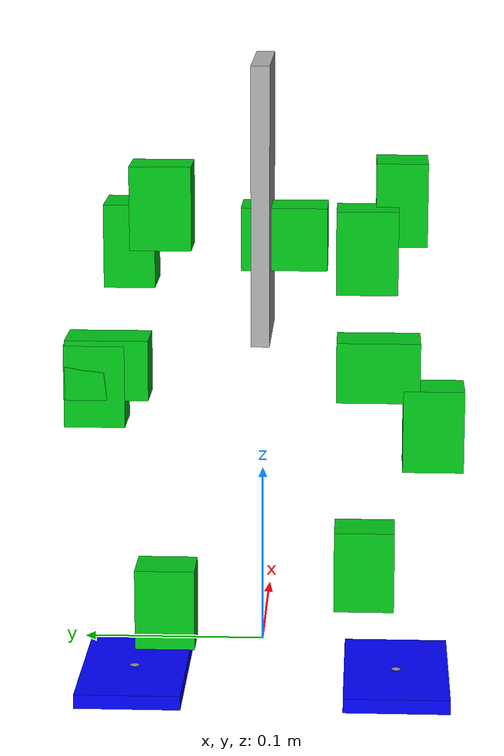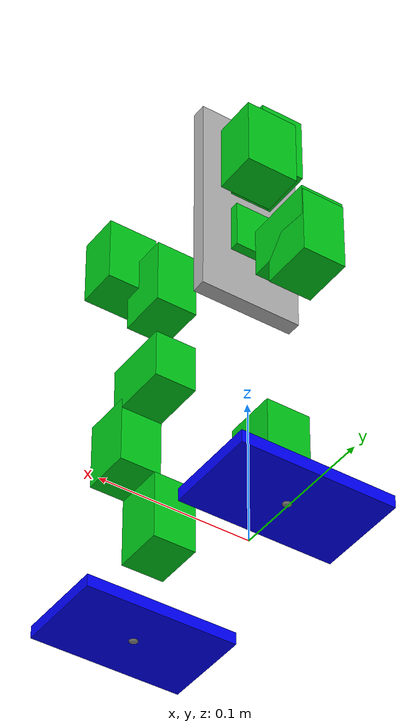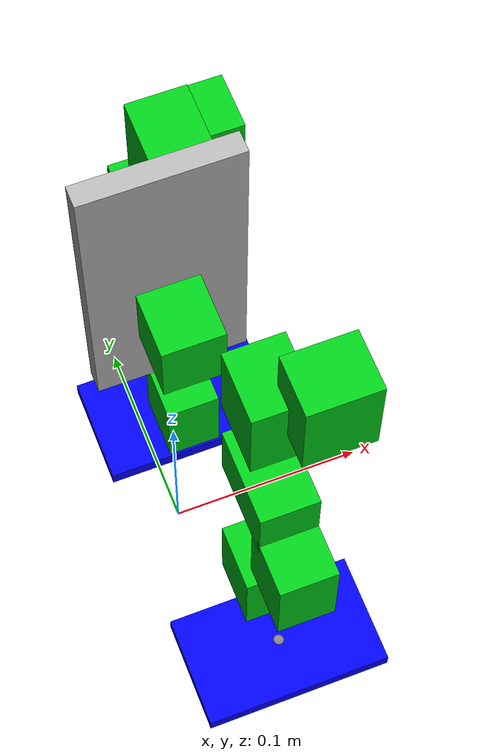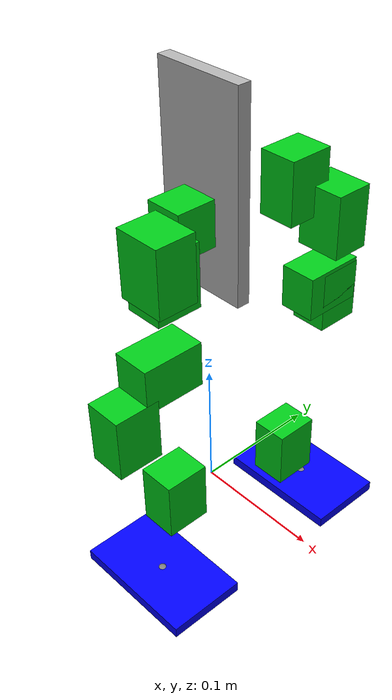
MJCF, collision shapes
<mujoco model="Phonebot_URDF_v2">
  <default>
    <default class="robot">
      <default class="motor">
        <joint stiffness="0" damping="0.01" frictionloss="0.01" armature="0.02" />
      </default>
      <default class="visual">
        <geom material="visualgeom" contype="0" conaffinity="0" group="2" />
      </default>
      <!-- We keep the original collision defaults for solver parameters, but we will NOT use mesh collisions. -->
      <default class="collision">
        <geom material="collision_material" condim="3" contype="0" conaffinity="1" priority="1" group="1" solref="0.005 1" solimp="0.99 0.999 1e-05" friction="1 0.01 0.01" />
      </default>
    </default>
  </default>

  <compiler angle="radian" meshdir="meshes/" />
  <asset>
    <material name="visualgeom" rgba="1 0.949019607843137 0.898039215686275 1" />
    <material name="default_material" rgba="0.7 0.7 0.7 1" />
    <material name="collision_material" rgba="0.89804 0.91765 0.92941 1.0" />
    <mesh name="base_link.STL" file="base_link.STL" />
    <mesh name="Body_Link.STL" file="Body_Link.STL" />
    <mesh name="L_Hip_Pitch_Link.STL" file="L_Hip_Pitch_Link.STL" />
    <mesh name="L_Hip_Roll_Link.STL" file="L_Hip_Roll_Link.STL" />
    <mesh name="L_Hip_Yaw_Link.STL" file="L_Hip_Yaw_Link.STL" />
    <mesh name="L_Knee_Pitch_Link.STL" file="L_Knee_Pitch_Link.STL" />
    <mesh name="L_Ankle_Pitch_Link.STL" file="L_Ankle_Pitch_Link.STL" />
    <mesh name="L_Ankle_Roll_Link.STL" file="L_Ankle_Roll_Link.STL" />
    <mesh name="R_Hip_Pitch_Link.STL" file="R_Hip_Pitch_Link.STL" />
    <mesh name="R_Hip_Roll_Link.STL" file="R_Hip_Roll_Link.STL" />
    <mesh name="R_Hip_Yaw_Link.STL" file="R_Hip_Yaw_Link.STL" />
    <mesh name="R_Knee_Pitch_Link.STL" file="R_Knee_Pitch_Link.STL" />
    <mesh name="R_Ankle_Pitch_Link.STL" file="R_Ankle_Pitch_Link.STL" />
    <mesh name="R_Ankle_Roll_Link.STL" file="R_Ankle_Roll_Link.STL" />
  </asset>

  <worldbody>
    <body name="base_motor_link" pos="0.00000000 0.00000000 0.23100056" quat="1 0 0 0" childclass="robot">
      <freejoint name="floating_base" />
      <site name="imu" pos="0.000000 0.000000 0.000000" quat="0.707107 0.000000 0.000000 0.707107" />

      <!-- Visual mesh only (no collision). -->
      <geom name="base_motor_link_visual" pos="0 0 0" quat="1 0 0 0" type="mesh" mesh="base_link.STL" class="visual" />
      <!-- Green debug collision proxy (disabled collision like old motor boxes). -->
      <geom name="base_motor_link_collision_box" type="box" size="0.014250 0.023250 0.017000" pos="0.000000 -0.012000 0.000000"
            rgba="0.0 0.8 0.1 1.0" contype="0" conaffinity="0" group="1" />

      <!-- Left leg (names aligned to old phonebot_general.xml) -->
      <body name="l_hip_pitch" pos="0.024 0.05675 0" quat="0.7071054825112363 -0.7071080798594735 0.0 0.0">
        <inertial pos="0.000393520865845574 0.0117226185476305 0.0166926526043892" quat="1.0 0.0 0.0 0.0" mass="0.0503140117431749" diaginertia="1.11934938325154e-05 7.37974976874462e-06 1.31723971411949e-05" />
        <geom name="l_hip_pitch_visual" pos="0 0 0" quat="1 0 0 0" type="mesh" mesh="L_Hip_Pitch_Link.STL" class="visual" />
        <geom name="l_hip_pitch_collision_box" type="box" size="0.014250 0.023250 0.017000" pos="0.000000 -0.012000 0.000000"
              rgba="0.0 0.8 0.1 1.0" contype="0" conaffinity="0" group="1" />

        <!-- Match reference model: hip_pitch motor casing is BEFORE the joint. -->
        <body name="l_hip_pitch_out" pos="0 0 0" quat="1 0 0 0">
          <inertial pos="0 0 0" quat="1 0 0 0" mass="0.001" diaginertia="0.000000016667 0.000000016667 0.000000016667" />
          <joint name="l_hip_pitch_joint" type="hinge" ref="0.0" class="motor" range="-1.571 1.571" axis="0 0 1" />

          <body name="l_hip_roll" pos="0.019 0 0.01875" quat="-2.5973434669646147e-06 0.707105482506466 2.597353007557415e-06 0.7071080798547033">
            <inertial pos="8.30740041594946E-06 -0.0539730760978963 -0.0289917248021264" quat="1.0 0.0 0.0 0.0" mass="0.0577821503558218" diaginertia="1.85527228913837e-05 1.6254327826533e-05 9.78707268328593e-06" />
            <geom name="l_hip_roll_visual" pos="0 0 0" quat="1 0 0 0" type="mesh" mesh="L_Hip_Roll_Link.STL" class="visual" />
            <geom name="l_hip_roll_collision_box" type="box" size="0.014250 0.023250 0.017000" pos="0.000000 -0.012000 0.000000"
                  rgba="0.0 0.8 0.1 1.0" contype="0" conaffinity="0" group="1" />

            <!-- Match reference model: hip_roll motor casing is BEFORE the joint. -->
            <body name="l_hip_roll_out" pos="0 0 0" quat="1 0 0 0">
              <inertial pos="0 0 0" quat="1 0 0 0" mass="0.001" diaginertia="0.000000016667 0.000000016667 0.000000016667" />
              <joint name="l_hip_roll_joint" type="hinge" ref="0.0" class="motor" range="-0.786 3.142" axis="0 0 1" />

              <body name="l_hip_thigh" pos="0 -0.07925 -0.019" quat="0.4999981633974483 0.49999999999662686 -0.49999999999662686 0.5000018366025516">
                <inertial pos="1.04083408558608E-17 -1.38777878078145E-17 0.00625275879894566" quat="1.0 0.0 0.0 0.0" mass="0.00558246650899707" diaginertia="1.83396034792803e-06 4.55463603177527e-07 1.84259526538467e-06" />
                <geom name="l_hip_thigh_visual" pos="0 0 0" quat="1 0 0 0" type="mesh" mesh="L_Hip_Yaw_Link.STL" class="visual" />
                <geom name="l_hip_thigh_collision_box" type="box" size="0.014250 0.023250 0.017000" pos="0.000000 -0.012000 0.000000"
                      rgba="0.0 0.8 0.1 1.0" contype="0" conaffinity="0" group="1" />

                <!-- Match reference model: hip_thigh motor casing is BEFORE the joint. -->
                <body name="l_hip_thigh_out" pos="0 0 0" quat="1 0 0 0">
                  <inertial pos="0 0 0" quat="1 0 0 0" mass="0.001" diaginertia="0.000000016667 0.000000016667 0.000000016667" />
                  <!-- URDF hip_yaw mapped to old l_hip_thigh_joint -->
                  <joint name="l_hip_thigh_joint" type="hinge" ref="0.0" class="motor" range="-3.142 3.142" axis="0 0 1" />

                  <body name="l_hip_calf" pos="0 -0.019 0.02125" quat="0.7071054825112363 0.7071080798594735 0.0 0.0">
                    <!-- URDF knee_pitch mapped to old l_hip_calf_joint -->
                    <joint name="l_hip_calf_joint" type="hinge" ref="0.0" class="motor" range="-1.571 1.571" axis="0 0 1" />
                    <inertial pos="0.000851922444856955 0.0302265598825809 -0.0188367597643943" quat="1.0 0.0 0.0 0.0" mass="0.0859142330719075" diaginertia="3.92786008778373e-05 2.10807528817828e-05 3.03814272871544e-05" />
                    <geom name="l_hip_calf_visual" pos="0 0 0" quat="1 0 0 0" type="mesh" mesh="L_Knee_Pitch_Link.STL" class="visual" />
                    <geom name="l_hip_calf_collision_box" type="box" size="0.014250 0.023250 0.017000" pos="0.000000 -0.012000 0.000000"
                          rgba="0.0 0.8 0.1 1.0" contype="0" conaffinity="0" group="1" />

                    <body name="l_ankle_pitch" pos="0 0.1065 -0.0382" quat="-3.673205103346574e-06 0.9999999999932537 0.0 -0.0">
                      <joint name="l_ankle_pitch_joint" type="hinge" ref="0.0" class="motor" range="-1.571 1.571" axis="0 0 1" />
                      <inertial pos="-0.0163209351577764 -0.0112732070267727 -0.0187770389076161" quat="1.0 0.0 0.0 0.0" mass="0.10289318099601" diaginertia="2.63371352901457e-05 1.51681275400878e-05 2.42013656254686e-05" />
                      <geom name="l_ankle_pitch_visual" pos="0 0 0" quat="1 0 0 0" type="mesh" mesh="L_Ankle_Pitch_Link.STL" class="visual" />
                      <geom name="l_ankle_pitch_collision_box" type="box" size="0.014250 0.023250 0.017000" pos="0.000000 -0.012000 0.000000"
                            rgba="0.0 0.8 0.1 1.0" contype="0" conaffinity="0" group="1" />
                      <geom name="l_ankle_pitch_collision_box_2" type="box" size="0.014250 0.023250 0.017000" pos="0.000000 -0.012000 0.000000"
                            rgba="0.0 0.8 0.1 1.0" contype="0" conaffinity="0" group="1" />

                      <body name="l_ankle_roll" pos="-0.01875 -0.024 -0.019" quat="0.7071054825112363 0.0 0.7071080798594735 0.0">
                        <inertial pos="2.26157387261949E-09 -0.0302538242168855 0.0224329681837724" quat="1.0 0.0 0.0 0.0" mass="0.199941915686484" diaginertia="0.000160746415074451 0.000207710045474122 5.92078764405586e-05" />
                        <geom name="l_ankle_roll_visual" pos="0 0 0" quat="1 0 0 0" type="mesh" mesh="L_Ankle_Roll_Link.STL" class="visual" />

                        <!-- Match reference model: ankle_roll motor casing is BEFORE the joint. -->
                        <body name="l_ankle_roll_out" pos="0 0 0" quat="1 0 0 0">
                          <inertial pos="0 0 0" quat="1 0 0 0" mass="0.001" diaginertia="0.000000016667 0.000000016667 0.000000016667" />
                          <joint name="l_ankle_roll_joint" type="hinge" ref="0.0" class="motor" range="-1.571 1.571" axis="0 0 1" />

                          <!-- Real contact geometry: feet only (like old model). -->
                          <body name="l_end_effector" pos="0.000000 -0.0315000 0.0225000" quat="-0.500000 0.500000 -0.500000 -0.500000">
                            <geom name="left_foot" type="box" size="0.050000 0.030000 0.004100" pos="0 0 0"
                                  rgba="0.0 0.0 1.0 1.0" contype="1" conaffinity="1" group="0" />
                            <site name="left_foot" pos="0 0 0" quat="1 0 0 0" />
                          </body>
                        </body>
                      </body>
                    </body>
                  </body>
                </body>
              </body>
            </body>
          </body>
        </body>
      </body>

      <!-- Right leg -->
      <body name="r_hip_pitch" pos="0.024 -0.05675 0" quat="0.7071054825112363 0.7071080798594735 0.0 0.0">
        <inertial pos="0.00050052594333222 -0.0117226185590269 0.0166735468963194" quat="1.0 0.0 0.0 0.0" mass="0.0503140117662099" diaginertia="1.11934938447945e-05 7.37974977677535e-06 1.31723971628094e-05" />
        <geom name="r_hip_pitch_visual" pos="0 0 0" quat="1 0 0 0" type="mesh" mesh="R_Hip_Pitch_Link.STL" class="visual" />
        <geom name="r_hip_pitch_collision_box" type="box" size="0.014250 0.023250 0.017000" pos="0.000000 -0.012000 0.000000"
              rgba="0.0 0.8 0.1 1.0" contype="0" conaffinity="0" group="1" />

        <!-- Match reference model: hip_pitch motor casing is BEFORE the joint. -->
        <body name="r_hip_pitch_out" pos="0 0 0" quat="1 0 0 0">
          <inertial pos="0 0 0" quat="1 0 0 0" mass="0.001" diaginertia="0.000000016667 0.000000016667 0.000000016667" />
          <joint name="r_hip_pitch_joint" type="hinge" ref="0.0" class="motor" range="-1.571 1.571" axis="0 0 1" />

          <body name="r_hip_roll" pos="0.019 0 0.01875" quat="-2.5973434669646147e-06 0.707105482506466 2.597353007557415e-06 0.7071080798547033">
            <inertial pos="-8.30740041608824E-06 0.0539730760978963 -0.0289917248021264" quat="1.0 0.0 0.0 0.0" mass="0.0577821503558218" diaginertia="1.85527228913837e-05 1.6254327826533e-05 9.78707268328592e-06" />
            <geom name="r_hip_roll_visual" pos="0 0 0" quat="1 0 0 0" type="mesh" mesh="R_Hip_Roll_Link.STL" class="visual" />
            <geom name="r_hip_roll_collision_box" type="box" size="0.014250 0.023250 0.017000" pos="0.000000 -0.012000 0.000000"
                  rgba="0.0 0.8 0.1 1.0" contype="0" conaffinity="0" group="1" />

            <!-- Match reference model: hip_roll motor casing is BEFORE the joint. -->
            <body name="r_hip_roll_out" pos="0 0 0" quat="1 0 0 0">
              <inertial pos="0 0 0" quat="1 0 0 0" mass="0.001" diaginertia="0.000000016667 0.000000016667 0.000000016667" />
              <joint name="r_hip_roll_joint" type="hinge" ref="0.0" class="motor" range="-3.142 0.786" axis="0 0 1" />

              <body name="r_hip_thigh" pos="0 0.07925 -0.019" quat="-0.5000036731949838 0.4999981633907021 0.5000018365958054 0.4999963267847773">
                <inertial pos="-6.07153216591882E-16 4.16333634234434E-17 0.00625275879894549" quat="1.0 0.0 0.0 0.0" mass="0.00558246650899706" diaginertia="1.83396034792803e-06 4.55463603177527e-07 1.84259526538467e-06" />
                <geom name="r_hip_thigh_visual" pos="0 0 0" quat="1 0 0 0" type="mesh" mesh="R_Hip_Yaw_Link.STL" class="visual" />
                <geom name="r_hip_thigh_collision_box" type="box" size="0.014250 0.023250 0.017000" pos="0.000000 -0.012000 0.000000"
                      rgba="0.0 0.8 0.1 1.0" contype="0" conaffinity="0" group="1" />

                <!-- Match reference model: hip_thigh motor casing is BEFORE the joint. -->
                <body name="r_hip_thigh_out" pos="0 0 0" quat="1 0 0 0">
                  <inertial pos="0 0 0" quat="1 0 0 0" mass="0.001" diaginertia="0.000000016667 0.000000016667 0.000000016667" />
                  <!-- URDF hip_yaw mapped to old r_hip_thigh_joint -->
                  <joint name="r_hip_thigh_joint" type="hinge" ref="0.0" class="motor" range="-3.142 3.142" axis="0 0 1" />

                  <body name="r_hip_calf" pos="0 0.019 0.02125" quat="0.7071054825112363 -0.7071080798594735 0.0 0.0">
                    <!-- URDF knee_pitch mapped to old r_hip_calf_joint -->
                    <joint name="r_hip_calf_joint" type="hinge" ref="0.0" class="motor" range="-1.571 1.571" axis="0 0 1" />
                    <inertial pos="0.000863111334580446 -0.030226559882581 -0.018639658989542" quat="1.0 0.0 0.0 0.0" mass="0.0859142330719075" diaginertia="3.92786008778374e-05 2.10807528817828e-05 3.03814272871544e-05" />
                    <geom name="r_hip_calf_visual" pos="0 0 0" quat="1 0 0 0" type="mesh" mesh="R_Knee_Pitch_Link.STL" class="visual" />
                    <geom name="r_hip_calf_collision_box" type="box" size="0.014250 0.023250 0.017000" pos="0.000000 -0.012000 0.000000"
                          rgba="0.0 0.8 0.1 1.0" contype="0" conaffinity="0" group="1" />

                    <body name="r_ankle_pitch" pos="0 -0.1065 -0.0378" quat="-3.673205103346574e-06 0.9999999999932537 0.0 -0.0">
                      <joint name="r_ankle_pitch_joint" type="hinge" ref="0.0" class="motor" range="-1.571 1.571" axis="0 0 1" />
                      <inertial pos="-0.0163302777131783 0.011273207032122 -0.0187857787610128" quat="1.0 0.0 0.0 0.0" mass="0.102893180972975" diaginertia="2.63371352688847e-05 1.51681275317499e-05 2.42013656139885e-05" />
                      <geom name="r_ankle_pitch_visual" pos="0 0 0" quat="1 0 0 0" type="mesh" mesh="R_Ankle_Pitch_Link.STL" class="visual" />
                      <geom name="r_ankle_pitch_collision_box" type="box" size="0.014250 0.023250 0.017000" pos="0.000000 -0.012000 0.000000"
                            rgba="0.0 0.8 0.1 1.0" contype="0" conaffinity="0" group="1" />
                      <geom name="r_ankle_pitch_collision_box_2" type="box" size="0.014250 0.023250 0.017000" pos="0.000000 -0.012000 0.000000"
                            rgba="0.0 0.8 0.1 1.0" contype="0" conaffinity="0" group="1" />

                      <body name="r_ankle_roll" pos="-0.01875 0.024 -0.019" quat="-2.5973434669646147e-06 0.7071080798547033 2.597353007557415e-06 0.707105482506466">
                        <inertial pos="2.26157140237326E-09 -0.0302538242168844 0.0224329681837727" quat="1.0 0.0 0.0 0.0" mass="0.199941915686484" diaginertia="0.000160746415074451 0.000207710045474122 5.92078764405586e-05" />
                        <geom name="r_ankle_roll_visual" pos="0 0 0" quat="1 0 0 0" type="mesh" mesh="R_Ankle_Roll_Link.STL" class="visual" />

                        <!-- Match reference model: ankle_roll motor casing is BEFORE the joint. -->
                        <body name="r_ankle_roll_out" pos="0 0 0" quat="1 0 0 0">
                          <inertial pos="0 0 0" quat="1 0 0 0" mass="0.001" diaginertia="0.000000016667 0.000000016667 0.000000016667" />
                          <joint name="r_ankle_roll_joint" type="hinge" ref="0.0" class="motor" range="-1.571 1.571" axis="0 0 1" />

                          <body name="r_end_effector" pos="-0.000000 -0.0315000 0.0225000" quat="-0.500000 0.500000 0.500000 0.500000">
                            <geom name="right_foot" type="box" size="0.050000 0.030000 0.004100" pos="0 0 0"
                                  rgba="0.0 0.0 1.0 1.0" contype="1" conaffinity="1" group="0" />
                            <site name="right_foot" pos="0 0 0" quat="1 0 0 0" />
                          </body>
                        </body>
                      </body>
                    </body>
                  </body>
                </body>
              </body>
            </body>
          </body>
        </body>
      </body>

      <!-- Trunk -->
      <body name="trunk_link" pos="0 0 0.0205" quat="1.0 0.0 0.0 0.0">
        <joint name="base_to_trunk" type="hinge" ref="0.0" class="motor" range="-3.142 3.142" axis="0 0 1" />
        <inertial pos="0.0218668011738023 -0.000431568318375537 0.05417319466971" quat="1.0 0.0 0.0 0.0" mass="0.386680464655816" diaginertia="0.000620927600653995 0.000390567916715494 0.000310705669130959" />
        <geom name="trunk_link_visual" pos="0 0 0" quat="1 0 0 0" type="mesh" mesh="Body_Link.STL" class="visual" />
        <geom name="trunk_link_box" type="box" size="0.035000 0.005000 0.075000" pos="0 0 0" rgba="0.7 0.7 0.7 1.0" contype="0" conaffinity="0" group="0" />
      </body>

      <site name="base_link_site" pos="0 0 0" quat="1 0 0 0" />
      <camera name="front_camera" mode="track" fovy="90.0" quat="4.329780281177467e-17 4.329780281177466e-17 0.7071067811865475 0.7071067811865476" pos="0.0 2.0 0.5" />
      <camera name="side_camera" mode="track" fovy="90.0" quat="-0.5 -0.4999999999999999 0.5 0.5000000000000001" pos="-2.0 0.0 0.5" />
    </body>
  </worldbody>

  <!-- Match the old controller-style position actuators + names. -->
  <actuator>
    <position name="l_hip_pitch" joint="l_hip_pitch_joint" kp="5" kv="0" ctrlrange="-3.14159 3.14159" />
    <position name="l_hip_roll" joint="l_hip_roll_joint" kp="5" kv="0" ctrlrange="-3.14159 3.14159" />
    <position name="l_hip_thigh" joint="l_hip_thigh_joint" kp="5" kv="0" ctrlrange="-3.14159 3.14159" />
    <position name="l_hip_calf" joint="l_hip_calf_joint" kp="5" kv="0" ctrlrange="-3.14159 3.14159" />
    <position name="l_ankle_pitch" joint="l_ankle_pitch_joint" kp="5" kv="0" ctrlrange="-3.14159 3.14159" />
    <position name="l_ankle_roll" joint="l_ankle_roll_joint" kp="5" kv="0" ctrlrange="-3.14159 3.14159" />
    <position name="r_hip_pitch" joint="r_hip_pitch_joint" kp="5" kv="0" ctrlrange="-3.14159 3.14159" />
    <position name="r_hip_roll" joint="r_hip_roll_joint" kp="5" kv="0" ctrlrange="-3.14159 3.14159" />
    <position name="r_hip_thigh" joint="r_hip_thigh_joint" kp="5" kv="0" ctrlrange="-3.14159 3.14159" />
    <position name="r_hip_calf" joint="r_hip_calf_joint" kp="5" kv="0" ctrlrange="-3.14159 3.14159" />
    <position name="r_ankle_pitch" joint="r_ankle_pitch_joint" kp="5" kv="0" ctrlrange="-3.14159 3.14159" />
    <position name="r_ankle_roll" joint="r_ankle_roll_joint" kp="5" kv="0" ctrlrange="-3.14159 3.14159" />
    <position name="base_to_trunk" joint="base_to_trunk" kp="5" kv="0" ctrlrange="-3.14159 3.14159" />
  </actuator>

  <!-- Match old sensor naming/layout so downstream code can reuse it. -->
  <sensor>
    <framepos name="position" objtype="site" objname="imu" noise="0.001" />
    <velocimeter name="linear-velocity" site="imu" noise="0.001" cutoff="30" />
    <framequat name="orientation" objtype="site" objname="imu" noise="0.001" />
    <gyro name="angular-velocity" site="imu" noise="0.005" cutoff="34.9" />
    <accelerometer name="linear-acceleration" site="imu" noise="0.005" cutoff="157" />
    <magnetometer name="magnetometer" site="imu" />
    <gyro site="imu" name="gyro" />
    <velocimeter site="imu" name="local_linvel" />
    <accelerometer site="imu" name="accelerometer" />
    <framezaxis objtype="site" objname="imu" name="upvector" />
    <framexaxis objtype="site" objname="imu" name="forwardvector" />
    <framelinvel objtype="site" objname="imu" name="global_linvel" />
    <frameangvel objtype="site" objname="imu" name="global_angvel" />
    <framelinvel objtype="site" objname="left_foot" name="left_foot_global_linvel" />
    <framelinvel objtype="site" objname="right_foot" name="right_foot_global_linvel" />
    <framepos objtype="site" objname="left_foot" name="left_foot_pos" />
    <framepos objtype="site" objname="right_foot" name="right_foot_pos" />
    <jointpos name="l_hip_pitch_joint_pos" joint="l_hip_pitch_joint" />
    <jointvel name="l_hip_pitch_joint_vel" joint="l_hip_pitch_joint" />
    <jointactuatorfrc name="l_hip_pitch_joint_frc" joint="l_hip_pitch_joint" />
    <jointpos name="r_hip_pitch_joint_pos" joint="r_hip_pitch_joint" />
    <jointvel name="r_hip_pitch_joint_vel" joint="r_hip_pitch_joint" />
    <jointactuatorfrc name="r_hip_pitch_joint_frc" joint="r_hip_pitch_joint" />
    <jointpos name="l_hip_roll_joint_pos" joint="l_hip_roll_joint" />
    <jointvel name="l_hip_roll_joint_vel" joint="l_hip_roll_joint" />
    <jointactuatorfrc name="l_hip_roll_joint_frc" joint="l_hip_roll_joint" />
    <jointpos name="r_hip_roll_joint_pos" joint="r_hip_roll_joint" />
    <jointvel name="r_hip_roll_joint_vel" joint="r_hip_roll_joint" />
    <jointactuatorfrc name="r_hip_roll_joint_frc" joint="r_hip_roll_joint" />
    <jointpos name="l_hip_thigh_joint_pos" joint="l_hip_thigh_joint" />
    <jointvel name="l_hip_thigh_joint_vel" joint="l_hip_thigh_joint" />
    <jointactuatorfrc name="l_hip_thigh_joint_frc" joint="l_hip_thigh_joint" />
    <jointpos name="r_hip_thigh_joint_pos" joint="r_hip_thigh_joint" />
    <jointvel name="r_hip_thigh_joint_vel" joint="r_hip_thigh_joint" />
    <jointactuatorfrc name="r_hip_thigh_joint_frc" joint="r_hip_thigh_joint" />
    <jointpos name="l_hip_calf_joint_pos" joint="l_hip_calf_joint" />
    <jointvel name="l_hip_calf_joint_vel" joint="l_hip_calf_joint" />
    <jointactuatorfrc name="l_hip_calf_joint_frc" joint="l_hip_calf_joint" />
    <jointpos name="r_hip_calf_joint_pos" joint="r_hip_calf_joint" />
    <jointvel name="r_hip_calf_joint_vel" joint="r_hip_calf_joint" />
    <jointactuatorfrc name="r_hip_calf_joint_frc" joint="r_hip_calf_joint" />
    <jointpos name="l_ankle_pitch_joint_pos" joint="l_ankle_pitch_joint" />
    <jointvel name="l_ankle_pitch_joint_vel" joint="l_ankle_pitch_joint" />
    <jointactuatorfrc name="l_ankle_pitch_joint_frc" joint="l_ankle_pitch_joint" />
    <jointpos name="r_ankle_pitch_joint_pos" joint="r_ankle_pitch_joint" />
    <jointvel name="r_ankle_pitch_joint_vel" joint="r_ankle_pitch_joint" />
    <jointactuatorfrc name="r_ankle_pitch_joint_frc" joint="r_ankle_pitch_joint" />
    <jointpos name="l_ankle_roll_joint_pos" joint="l_ankle_roll_joint" />
    <jointvel name="l_ankle_roll_joint_vel" joint="l_ankle_roll_joint" />
    <jointactuatorfrc name="l_ankle_roll_joint_frc" joint="l_ankle_roll_joint" />
    <jointpos name="r_ankle_roll_joint_pos" joint="r_ankle_roll_joint" />
    <jointvel name="r_ankle_roll_joint_vel" joint="r_ankle_roll_joint" />
    <jointactuatorfrc name="r_ankle_roll_joint_frc" joint="r_ankle_roll_joint" />
    <jointpos name="base_to_trunk_pos" joint="base_to_trunk" />
    <jointvel name="base_to_trunk_vel" joint="base_to_trunk" />
    <jointactuatorfrc name="base_to_trunk_frc" joint="base_to_trunk" />
  </sensor>
</mujoco>
